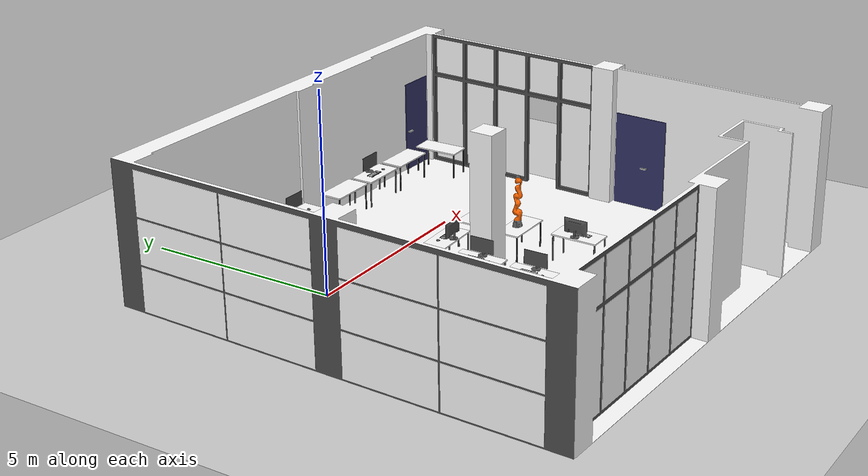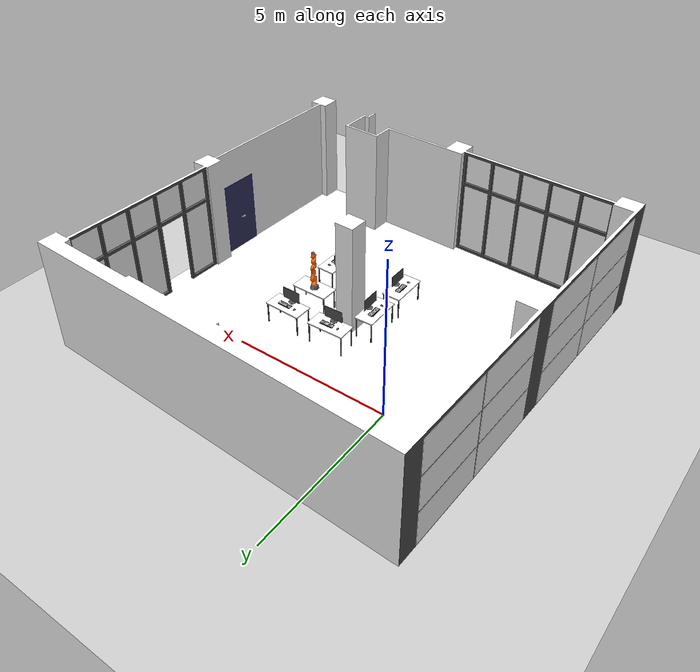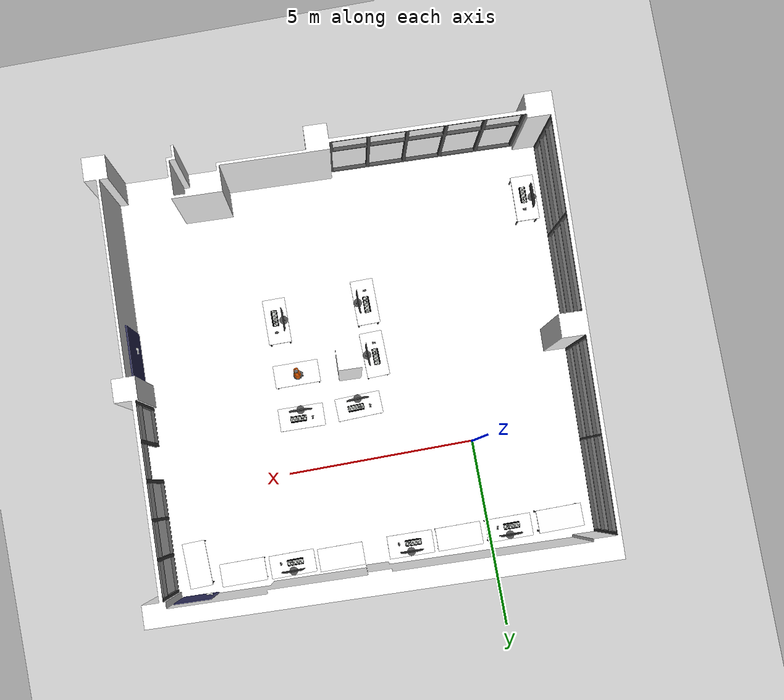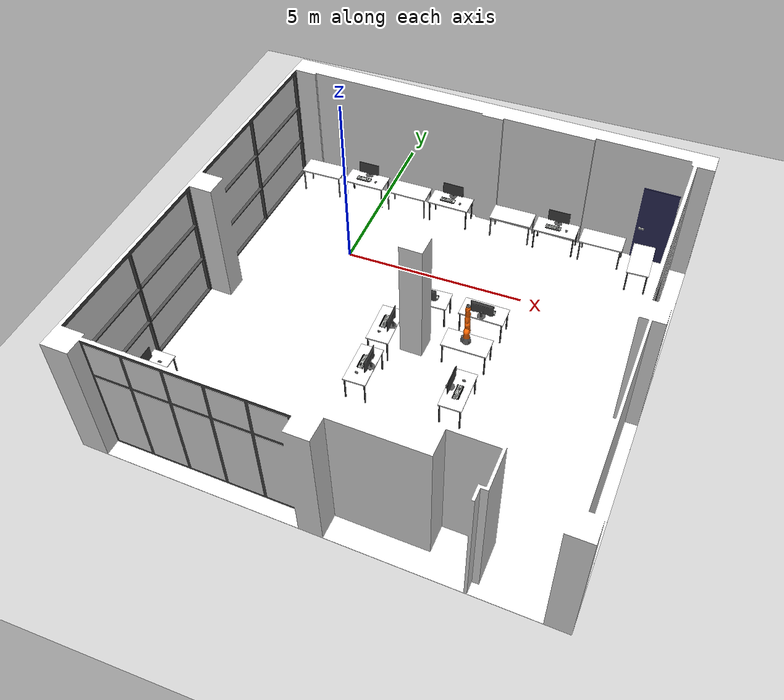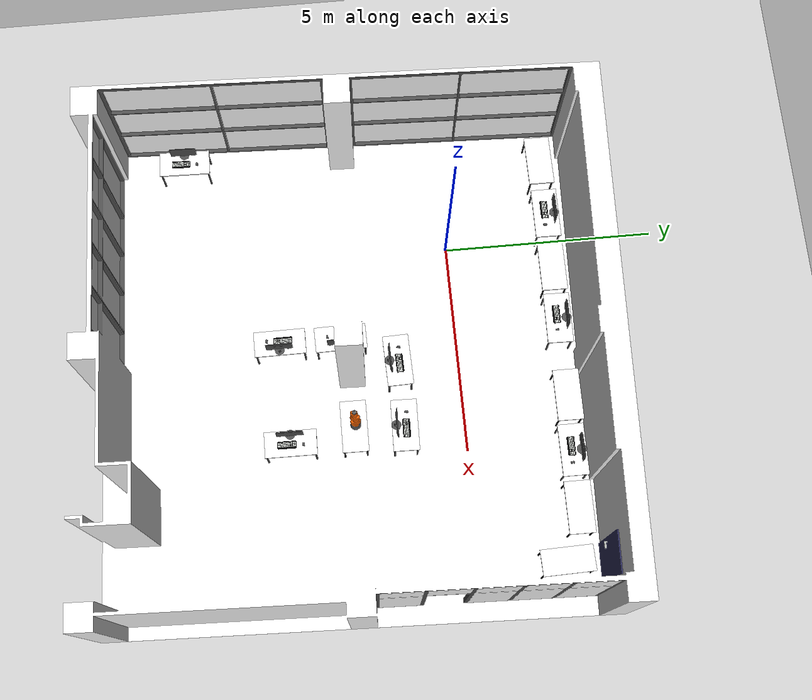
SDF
<sdf version="1.7">
 <world name="default">
  <light name="sun" type="directional">
   <pose>0 0 10 0 -0 0</pose>
   <diffuse>0.8 0.8 0.8 1</diffuse>
   <specular>0.2 0.2 0.2 1</specular>
   <attenuation>
    <range>1000</range>
    <constant>0.9</constant>
    <linear>0.01</linear>
    <quadratic>0.001</quadratic>
   </attenuation>
   <direction>-0.5 0.1 -0.9</direction>
   <spot><inner_angle>0</inner_angle><outer_angle>0</outer_angle><falloff>0</falloff></spot>
  </light>
  <model name="ground_plane">
   <static>1</static>
   <link name="link">
    <collision name="collision">
     <geometry><plane><normal>0 0 1</normal><size>100 100</size></plane></geometry>
     <surface>
      <contact><collide_bitmask>65535</collide_bitmask></contact>
      <friction><ode><mu>100</mu><mu2>50</mu2></ode></friction>
     </surface>
    </collision>
    <visual name="visual">
     <cast_shadows>0</cast_shadows>
     <geometry><plane><normal>0 0 1</normal><size>100 100</size></plane></geometry>
     <material>
      <script><uri>file://media/materials/scripts/gazebo.material</uri><name>Gazebo/Grey</name></script>
     </material>
    </visual>
   </link>
  </model>
  <gravity>0 0 -9.8</gravity>
  <magnetic_field>6e-06 2.3e-05 -4.2e-05</magnetic_field>
  <atmosphere type="adiabatic"/>
  <physics type="ode">
   <max_step_size>0.001</max_step_size>
   <real_time_factor>1</real_time_factor>
   <real_time_update_rate>1000</real_time_update_rate>
  </physics>
  <scene><ambient>0.4 0.4 0.4 1</ambient><background>0.7 0.7 0.7 1</background><shadows>1</shadows></scene>
  <spherical_coordinates>
   <surface_model>EARTH_WGS84</surface_model>
   <latitude_deg>0</latitude_deg>
   <longitude_deg>0</longitude_deg>
   <elevation>0</elevation>
   <heading_deg>0</heading_deg>
  </spherical_coordinates>
  <model name="zidovi">
   <link name="link_0">
    <inertial>
     <mass>1</mass>
     <inertia>
      <ixx>0.166667</ixx>
      <ixy>0</ixy>
      <ixz>0</ixz>
      <iyy>0.166667</iyy>
      <iyz>0</iyz>
      <izz>0.166667</izz>
     </inertia>
    </inertial>
    <pose>3e-06 -0 0 0 -0 0</pose>
    <visual name="visual">
     <pose>0 0 0.03 0 -0 0</pose>
     <geometry>
      <mesh>
       <uri>/home/slaven/catkin_ws/src/my_simulations/models/meshes/zidovi_sticker.dae</uri>
       <scale>1 1 1</scale>
      </mesh>
     </geometry>
    </visual>
    <collision name="collision">
     <max_contacts>100</max_contacts>
     <geometry>
      <mesh>
       <uri>/home/slaven/catkin_ws/src/my_simulations/models/meshes/zidovi_sticker.dae</uri>
       <scale>1 1 1</scale>
      </mesh>
     </geometry>
     <surface>
      <friction>
       <ode><mu>1</mu><mu2>1</mu2><fdir1>0 0 0</fdir1><slip1>0</slip1><slip2>0</slip2></ode>
       <torsional>
        <coefficient>1</coefficient>
        <patch_radius>0</patch_radius>
        <surface_radius>0</surface_radius>
        <use_patch_radius>1</use_patch_radius>
        <ode><slip>0</slip></ode>
       </torsional>
      </friction>
      <bounce><restitution_coefficient>0</restitution_coefficient><threshold>1e+06</threshold></bounce>
      <contact>
       <collide_without_contact>0</collide_without_contact>
       <collide_without_contact_bitmask>1</collide_without_contact_bitmask>
       <collide_bitmask>1</collide_bitmask>
       <ode>
        <soft_cfm>0</soft_cfm>
        <soft_erp>0.2</soft_erp>
        <kp>1e+13</kp>
        <kd>1</kd>
        <max_vel>0.01</max_vel>
        <min_depth>0</min_depth>
       </ode>
       <bullet>
        <split_impulse>1</split_impulse>
        <split_impulse_penetration_threshold>-0.01</split_impulse_penetration_threshold>
        <soft_cfm>0</soft_cfm>
        <soft_erp>0.2</soft_erp>
        <kp>1e+13</kp>
        <kd>1</kd>
       </bullet>
      </contact>
     </surface>
    </collision>
   </link>
   <static>0</static>
   <pose>2.92991 -2.52446 -2.7e-05 -0.000852 -0.000847 -0.035286</pose>
  </model>
  <model name="stol_i_komp">
   <link name="link_1">
    <inertial>
     <mass>1</mass>
     <inertia>
      <ixx>0.166667</ixx>
      <ixy>0</ixy>
      <ixz>0</ixz>
      <iyy>0.166667</iyy>
      <iyz>0</iyz>
      <izz>0.166667</izz>
     </inertia>
    </inertial>
    <visual name="visual">
     <geometry>
      <mesh>
       <uri>/home/slaven/catkin_ws/src/my_simulations/models/meshes/stol_i_komp.dae</uri>
       <scale>1 1 1</scale>
      </mesh>
     </geometry>
    </visual>
    <collision name="collision">
     <geometry>
      <mesh>
       <uri>/home/slaven/catkin_ws/src/my_simulations/models/meshes/stol_i_komp.dae</uri>
       <scale>1 1 1</scale>
      </mesh>
     </geometry>
     <surface>
      <friction>
       <ode><mu>1</mu><mu2>1</mu2><fdir1>0 0 0</fdir1><slip1>0</slip1><slip2>0</slip2></ode>
       <torsional>
        <coefficient>1</coefficient>
        <patch_radius>0</patch_radius>
        <surface_radius>0</surface_radius>
        <use_patch_radius>1</use_patch_radius>
        <ode><slip>0</slip></ode>
       </torsional>
      </friction>
      <bounce><restitution_coefficient>0</restitution_coefficient><threshold>1e+06</threshold></bounce>
      <contact>
       <collide_without_contact>0</collide_without_contact>
       <collide_without_contact_bitmask>1</collide_without_contact_bitmask>
       <collide_bitmask>1</collide_bitmask>
       <ode>
        <soft_cfm>0</soft_cfm>
        <soft_erp>0.2</soft_erp>
        <kp>1e+13</kp>
        <kd>1</kd>
        <max_vel>0.01</max_vel>
        <min_depth>0</min_depth>
       </ode>
       <bullet>
        <split_impulse>1</split_impulse>
        <split_impulse_penetration_threshold>-0.01</split_impulse_penetration_threshold>
        <soft_cfm>0</soft_cfm>
        <soft_erp>0.2</soft_erp>
        <kp>1e+13</kp>
        <kd>1</kd>
       </bullet>
      </contact>
     </surface>
    </collision>
   </link>
   <static>0</static>
   <pose>2.19359 -2.72188 0.7 0 -0 1.59005</pose>
  </model>
  <model name="stol_i_komp_0">
   <link name="link_1">
    <inertial>
     <mass>1</mass>
     <inertia>
      <ixx>0.166667</ixx>
      <ixy>0</ixy>
      <ixz>0</ixz>
      <iyy>0.166667</iyy>
      <iyz>0</iyz>
      <izz>0.166667</izz>
     </inertia>
    </inertial>
    <visual name="visual">
     <geometry>
      <mesh>
       <uri>/home/slaven/catkin_ws/src/my_simulations/models/meshes/stol_i_komp.dae</uri>
       <scale>1 1 1</scale>
      </mesh>
     </geometry>
    </visual>
    <collision name="collision">
     <geometry>
      <mesh>
       <uri>/home/slaven/catkin_ws/src/my_simulations/models/meshes/stol_i_komp.dae</uri>
       <scale>1 1 1</scale>
      </mesh>
     </geometry>
     <surface>
      <friction>
       <ode><mu>1</mu><mu2>1</mu2><fdir1>0 0 0</fdir1><slip1>0</slip1><slip2>0</slip2></ode>
       <torsional>
        <coefficient>1</coefficient>
        <patch_radius>0</patch_radius>
        <surface_radius>0</surface_radius>
        <use_patch_radius>1</use_patch_radius>
        <ode><slip>0</slip></ode>
       </torsional>
      </friction>
      <bounce><restitution_coefficient>0</restitution_coefficient><threshold>1e+06</threshold></bounce>
      <contact>
       <collide_without_contact>0</collide_without_contact>
       <collide_without_contact_bitmask>1</collide_without_contact_bitmask>
       <collide_bitmask>1</collide_bitmask>
       <ode>
        <soft_cfm>0</soft_cfm>
        <soft_erp>0.2</soft_erp>
        <kp>1e+13</kp>
        <kd>1</kd>
        <max_vel>0.01</max_vel>
        <min_depth>0</min_depth>
       </ode>
       <bullet>
        <split_impulse>1</split_impulse>
        <split_impulse_penetration_threshold>-0.01</split_impulse_penetration_threshold>
        <soft_cfm>0</soft_cfm>
        <soft_erp>0.2</soft_erp>
        <kp>1e+13</kp>
        <kd>1</kd>
       </bullet>
      </contact>
     </surface>
    </collision>
   </link>
   <static>0</static>
   <pose>2.18774 -4.14368 0.699965 3.6e-05 -7e-06 1.57567</pose>
  </model>
  <model name="stol_i_komp_1">
   <link name="link_1">
    <inertial>
     <mass>1</mass>
     <inertia>
      <ixx>0.166667</ixx>
      <ixy>0</ixy>
      <ixz>0</ixz>
      <iyy>0.166667</iyy>
      <iyz>0</iyz>
      <izz>0.166667</izz>
     </inertia>
    </inertial>
    <visual name="visual">
     <geometry>
      <mesh>
       <uri>/home/slaven/catkin_ws/src/my_simulations/models/meshes/stol_i_komp.dae</uri>
       <scale>1 1 1</scale>
      </mesh>
     </geometry>
    </visual>
    <collision name="collision">
     <geometry>
      <mesh>
       <uri>/home/slaven/catkin_ws/src/my_simulations/models/meshes/stol_i_komp.dae</uri>
       <scale>1 1 1</scale>
      </mesh>
     </geometry>
     <surface>
      <friction>
       <ode><mu>1</mu><mu2>1</mu2><fdir1>0 0 0</fdir1><slip1>0</slip1><slip2>0</slip2></ode>
       <torsional>
        <coefficient>1</coefficient>
        <patch_radius>0</patch_radius>
        <surface_radius>0</surface_radius>
        <use_patch_radius>1</use_patch_radius>
        <ode><slip>0</slip></ode>
       </torsional>
      </friction>
      <bounce><restitution_coefficient>0</restitution_coefficient><threshold>1e+06</threshold></bounce>
      <contact>
       <collide_without_contact>0</collide_without_contact>
       <collide_without_contact_bitmask>1</collide_without_contact_bitmask>
       <collide_bitmask>1</collide_bitmask>
       <ode>
        <soft_cfm>0</soft_cfm>
        <soft_erp>0.2</soft_erp>
        <kp>1e+13</kp>
        <kd>1</kd>
        <max_vel>0.01</max_vel>
        <min_depth>0</min_depth>
       </ode>
       <bullet>
        <split_impulse>1</split_impulse>
        <split_impulse_penetration_threshold>-0.01</split_impulse_penetration_threshold>
        <soft_cfm>0</soft_cfm>
        <soft_erp>0.2</soft_erp>
        <kp>1e+13</kp>
        <kd>1</kd>
       </bullet>
      </contact>
     </surface>
    </collision>
   </link>
   <static>0</static>
   <pose>4.59845 -4.05765 0.700677 0.001026 -0.001526 -1.5811</pose>
  </model>
  <model name="stol_i_komp_2">
   <link name="link_1">
    <inertial>
     <mass>1</mass>
     <inertia>
      <ixx>0.166667</ixx>
      <ixy>0</ixy>
      <ixz>0</ixz>
      <iyy>0.166667</iyy>
      <iyz>0</iyz>
      <izz>0.166667</izz>
     </inertia>
    </inertial>
    <visual name="visual">
     <geometry>
      <mesh>
       <uri>/home/slaven/catkin_ws/src/my_simulations/models/meshes/stol_i_komp.dae</uri>
       <scale>1 1 1</scale>
      </mesh>
     </geometry>
    </visual>
    <collision name="collision">
     <geometry>
      <mesh>
       <uri>/home/slaven/catkin_ws/src/my_simulations/models/meshes/stol_i_komp.dae</uri>
       <scale>1 1 1</scale>
      </mesh>
     </geometry>
     <surface>
      <friction>
       <ode><mu>1</mu><mu2>1</mu2><fdir1>0 0 0</fdir1><slip1>0</slip1><slip2>0</slip2></ode>
       <torsional>
        <coefficient>1</coefficient>
        <patch_radius>0</patch_radius>
        <surface_radius>0</surface_radius>
        <use_patch_radius>1</use_patch_radius>
        <ode><slip>0</slip></ode>
       </torsional>
      </friction>
      <bounce><restitution_coefficient>0</restitution_coefficient><threshold>1e+06</threshold></bounce>
      <contact>
       <collide_without_contact>0</collide_without_contact>
       <collide_without_contact_bitmask>1</collide_without_contact_bitmask>
       <collide_bitmask>1</collide_bitmask>
       <ode>
        <soft_cfm>0</soft_cfm>
        <soft_erp>0.2</soft_erp>
        <kp>1e+13</kp>
        <kd>1</kd>
        <max_vel>0.01</max_vel>
        <min_depth>0</min_depth>
       </ode>
       <bullet>
        <split_impulse>1</split_impulse>
        <split_impulse_penetration_threshold>-0.01</split_impulse_penetration_threshold>
        <soft_cfm>0</soft_cfm>
        <soft_erp>0.2</soft_erp>
        <kp>1e+13</kp>
        <kd>1</kd>
       </bullet>
      </contact>
     </surface>
    </collision>
   </link>
   <static>0</static>
   <pose>2.85014 -1.43521 0.699805 0.000254 -1.3e-05 0.028795</pose>
  </model>
  <light name="user_point_light_0" type="point">
   <pose>-4.62597 0.168359 1 0 -0 0</pose>
   <diffuse>0.5 0.5 0.5 1</diffuse>
   <specular>0.1 0.1 0.1 1</specular>
   <attenuation>
    <range>20</range>
    <constant>0.5</constant>
    <linear>0.01</linear>
    <quadratic>0.001</quadratic>
   </attenuation>
   <cast_shadows>0</cast_shadows>
   <direction>0 0 -1</direction>
   <spot><inner_angle>0</inner_angle><outer_angle>0</outer_angle><falloff>0</falloff></spot>
  </light>
  <model name="stol_i_komp_3">
   <link name="link_1">
    <inertial>
     <mass>1</mass>
     <inertia>
      <ixx>0.166667</ixx>
      <ixy>0</ixy>
      <ixz>0</ixz>
      <iyy>0.166667</iyy>
      <iyz>0</iyz>
      <izz>0.166667</izz>
     </inertia>
    </inertial>
    <visual name="visual">
     <geometry>
      <mesh>
       <uri>/home/slaven/catkin_ws/src/my_simulations/models/meshes/stol_i_komp.dae</uri>
       <scale>1 1 1</scale>
      </mesh>
     </geometry>
    </visual>
    <collision name="collision">
     <geometry>
      <mesh>
       <uri>/home/slaven/catkin_ws/src/my_simulations/models/meshes/stol_i_komp.dae</uri>
       <scale>1 1 1</scale>
      </mesh>
     </geometry>
     <surface>
      <friction>
       <ode><mu>1</mu><mu2>1</mu2><fdir1>0 0 0</fdir1><slip1>0</slip1><slip2>0</slip2></ode>
       <torsional>
        <coefficient>1</coefficient>
        <patch_radius>0</patch_radius>
        <surface_radius>0</surface_radius>
        <use_patch_radius>1</use_patch_radius>
        <ode><slip>0</slip></ode>
       </torsional>
      </friction>
      <bounce><restitution_coefficient>0</restitution_coefficient><threshold>1e+06</threshold></bounce>
      <contact>
       <collide_without_contact>0</collide_without_contact>
       <collide_without_contact_bitmask>1</collide_without_contact_bitmask>
       <collide_bitmask>1</collide_bitmask>
       <ode>
        <soft_cfm>0</soft_cfm>
        <soft_erp>0.2</soft_erp>
        <kp>1e+13</kp>
        <kd>1</kd>
        <max_vel>0.01</max_vel>
        <min_depth>0</min_depth>
       </ode>
       <bullet>
        <split_impulse>1</split_impulse>
        <split_impulse_penetration_threshold>-0.01</split_impulse_penetration_threshold>
        <soft_cfm>0</soft_cfm>
        <soft_erp>0.2</soft_erp>
        <kp>1e+13</kp>
        <kd>1</kd>
       </bullet>
      </contact>
     </surface>
    </collision>
   </link>
   <static>0</static>
   <pose>4.40014 -1.41546 0.699998 -0 4e-06 -0.022527</pose>
  </model>
  <model name="kuka">
   <link name="link_1">
    <inertial>
     <mass>1</mass>
     <inertia>
      <ixx>0.166667</ixx>
      <ixy>0</ixy>
      <ixz>0</ixz>
      <iyy>0.166667</iyy>
      <iyz>0</iyz>
      <izz>0.166667</izz>
     </inertia>
    </inertial>
    <pose>-0.00628 -0.063343 0.019073 0 -0 0</pose>
    <visual name="visual">
     <geometry>
      <mesh>
       <uri>/home/slaven/catkin_ws/src/my_simulations/models/meshes/LBR IIWA 14 R820.dae</uri>
       <scale>1 1 1</scale>
      </mesh>
     </geometry>
    </visual>
    <collision name="collision">
     <geometry>
      <mesh>
       <uri>/home/slaven/catkin_ws/src/my_simulations/models/meshes/LBR IIWA 14 R820.dae</uri>
       <scale>1 1 1</scale>
      </mesh>
     </geometry>
     <surface>
      <friction>
       <ode><mu>1</mu><mu2>1</mu2><fdir1>0 0 0</fdir1><slip1>0</slip1><slip2>0</slip2></ode>
       <torsional>
        <coefficient>1</coefficient>
        <patch_radius>0</patch_radius>
        <surface_radius>0</surface_radius>
        <use_patch_radius>1</use_patch_radius>
        <ode><slip>0</slip></ode>
       </torsional>
      </friction>
      <bounce><restitution_coefficient>0</restitution_coefficient><threshold>1e+06</threshold></bounce>
      <contact>
       <collide_without_contact>0</collide_without_contact>
       <collide_without_contact_bitmask>1</collide_without_contact_bitmask>
       <collide_bitmask>1</collide_bitmask>
       <ode>
        <soft_cfm>0</soft_cfm>
        <soft_erp>0.2</soft_erp>
        <kp>1e+13</kp>
        <kd>1</kd>
        <max_vel>0.01</max_vel>
        <min_depth>0</min_depth>
       </ode>
       <bullet>
        <split_impulse>1</split_impulse>
        <split_impulse_penetration_threshold>-0.01</split_impulse_penetration_threshold>
        <soft_cfm>0</soft_cfm>
        <soft_erp>0.2</soft_erp>
        <kp>1e+13</kp>
        <kd>1</kd>
       </bullet>
      </contact>
     </surface>
    </collision>
   </link>
   <static>0</static>
   <pose>4.30301 -2.47545 0.71629 0.000173 -0.000193 0.016546</pose>
  </model>
  <model name="stol">
   <link name="link_0">
    <inertial>
     <mass>1</mass>
     <inertia>
      <ixx>0.166667</ixx>
      <ixy>0</ixy>
      <ixz>0</ixz>
      <iyy>0.166667</iyy>
      <iyz>0</iyz>
      <izz>0.166667</izz>
     </inertia>
    </inertial>
    <visual name="visual">
     <geometry>
      <mesh><uri>/home/slaven/catkin_ws/src/my_simulations/models/meshes/stol.dae</uri><scale>1 1 1</scale></mesh>
     </geometry>
    </visual>
    <collision name="collision">
     <geometry>
      <mesh><uri>/home/slaven/catkin_ws/src/my_simulations/models/meshes/stol.dae</uri><scale>1 1 1</scale></mesh>
     </geometry>
     <surface>
      <friction>
       <ode><mu>1</mu><mu2>1</mu2><fdir1>0 0 0</fdir1><slip1>0</slip1><slip2>0</slip2></ode>
       <torsional>
        <coefficient>1</coefficient>
        <patch_radius>0</patch_radius>
        <surface_radius>0</surface_radius>
        <use_patch_radius>1</use_patch_radius>
        <ode><slip>0</slip></ode>
       </torsional>
      </friction>
      <bounce><restitution_coefficient>0</restitution_coefficient><threshold>1e+06</threshold></bounce>
      <contact>
       <collide_without_contact>0</collide_without_contact>
       <collide_without_contact_bitmask>1</collide_without_contact_bitmask>
       <collide_bitmask>1</collide_bitmask>
       <ode>
        <soft_cfm>0</soft_cfm>
        <soft_erp>0.2</soft_erp>
        <kp>1e+13</kp>
        <kd>1</kd>
        <max_vel>0.01</max_vel>
        <min_depth>0</min_depth>
       </ode>
       <bullet>
        <split_impulse>1</split_impulse>
        <split_impulse_penetration_threshold>-0.01</split_impulse_penetration_threshold>
        <soft_cfm>0</soft_cfm>
        <soft_erp>0.2</soft_erp>
        <kp>1e+13</kp>
        <kd>1</kd>
       </bullet>
      </contact>
     </surface>
    </collision>
   </link>
   <static>0</static>
   <pose>4.32731 -2.57704 0.699756 0.000138 -0.000345 -0.009697</pose>
  </model>
  <model name="stol_i_komp_4">
   <link name="link_1">
    <inertial>
     <mass>1</mass>
     <inertia>
      <ixx>0.166667</ixx>
      <ixy>0</ixy>
      <ixz>0</ixz>
      <iyy>0.166667</iyy>
      <iyz>0</iyz>
      <izz>0.166667</izz>
     </inertia>
    </inertial>
    <visual name="visual">
     <geometry>
      <mesh>
       <uri>/home/slaven/catkin_ws/src/my_simulations/models/meshes/stol_i_komp.dae</uri>
       <scale>1 1 1</scale>
      </mesh>
     </geometry>
    </visual>
    <collision name="collision">
     <geometry>
      <mesh>
       <uri>/home/slaven/catkin_ws/src/my_simulations/models/meshes/stol_i_komp.dae</uri>
       <scale>1 1 1</scale>
      </mesh>
     </geometry>
     <surface>
      <friction>
       <ode><mu>1</mu><mu2>1</mu2><fdir1>0 0 0</fdir1><slip1>0</slip1><slip2>0</slip2></ode>
       <torsional>
        <coefficient>1</coefficient>
        <patch_radius>0</patch_radius>
        <surface_radius>0</surface_radius>
        <use_patch_radius>1</use_patch_radius>
        <ode><slip>0</slip></ode>
       </torsional>
      </friction>
      <bounce><restitution_coefficient>0</restitution_coefficient><threshold>1e+06</threshold></bounce>
      <contact>
       <collide_without_contact>0</collide_without_contact>
       <collide_without_contact_bitmask>1</collide_without_contact_bitmask>
       <collide_bitmask>1</collide_bitmask>
       <ode>
        <soft_cfm>0</soft_cfm>
        <soft_erp>0.2</soft_erp>
        <kp>1e+13</kp>
        <kd>1</kd>
        <max_vel>0.01</max_vel>
        <min_depth>0</min_depth>
       </ode>
       <bullet>
        <split_impulse>1</split_impulse>
        <split_impulse_penetration_threshold>-0.01</split_impulse_penetration_threshold>
        <soft_cfm>0</soft_cfm>
        <soft_erp>0.2</soft_erp>
        <kp>1e+13</kp>
        <kd>1</kd>
       </bullet>
      </contact>
     </surface>
    </collision>
   </link>
   <static>0</static>
   <pose>2.15978 2.40815 0.69945 0.000234 8e-06 3.11956</pose>
  </model>
  <model name="stol_i_komp_5">
   <link name="link_1">
    <inertial>
     <mass>1</mass>
     <inertia>
      <ixx>0.166667</ixx>
      <ixy>0</ixy>
      <ixz>0</ixz>
      <iyy>0.166667</iyy>
      <iyz>0</iyz>
      <izz>0.166667</izz>
     </inertia>
    </inertial>
    <visual name="visual">
     <geometry>
      <mesh>
       <uri>/home/slaven/catkin_ws/src/my_simulations/models/meshes/stol_i_komp.dae</uri>
       <scale>1 1 1</scale>
      </mesh>
     </geometry>
    </visual>
    <collision name="collision">
     <geometry>
      <mesh>
       <uri>/home/slaven/catkin_ws/src/my_simulations/models/meshes/stol_i_komp.dae</uri>
       <scale>1 1 1</scale>
      </mesh>
     </geometry>
     <surface>
      <friction>
       <ode><mu>1</mu><mu2>1</mu2><fdir1>0 0 0</fdir1><slip1>0</slip1><slip2>0</slip2></ode>
       <torsional>
        <coefficient>1</coefficient>
        <patch_radius>0</patch_radius>
        <surface_radius>0</surface_radius>
        <use_patch_radius>1</use_patch_radius>
        <ode><slip>0</slip></ode>
       </torsional>
      </friction>
      <bounce><restitution_coefficient>0</restitution_coefficient><threshold>1e+06</threshold></bounce>
      <contact>
       <collide_without_contact>0</collide_without_contact>
       <collide_without_contact_bitmask>1</collide_without_contact_bitmask>
       <collide_bitmask>1</collide_bitmask>
       <ode>
        <soft_cfm>0</soft_cfm>
        <soft_erp>0.2</soft_erp>
        <kp>1e+13</kp>
        <kd>1</kd>
        <max_vel>0.01</max_vel>
        <min_depth>0</min_depth>
       </ode>
       <bullet>
        <split_impulse>1</split_impulse>
        <split_impulse_penetration_threshold>-0.01</split_impulse_penetration_threshold>
        <soft_cfm>0</soft_cfm>
        <soft_erp>0.2</soft_erp>
        <kp>1e+13</kp>
        <kd>1</kd>
       </bullet>
      </contact>
     </surface>
    </collision>
   </link>
   <static>0</static>
   <pose>-0.479364 2.44294 0.699515 0.000246 -0.000113 3.13127</pose>
  </model>
  <model name="stol_i_komp_6">
   <link name="link_1">
    <inertial>
     <mass>1</mass>
     <inertia>
      <ixx>0.166667</ixx>
      <ixy>0</ixy>
      <ixz>0</ixz>
      <iyy>0.166667</iyy>
      <iyz>0</iyz>
      <izz>0.166667</izz>
     </inertia>
    </inertial>
    <visual name="visual">
     <geometry>
      <mesh>
       <uri>/home/slaven/catkin_ws/src/my_simulations/models/meshes/stol_i_komp.dae</uri>
       <scale>1 1 1</scale>
      </mesh>
     </geometry>
    </visual>
    <collision name="collision">
     <geometry>
      <mesh>
       <uri>/home/slaven/catkin_ws/src/my_simulations/models/meshes/stol_i_komp.dae</uri>
       <scale>1 1 1</scale>
      </mesh>
     </geometry>
     <surface>
      <friction>
       <ode><mu>1</mu><mu2>1</mu2><fdir1>0 0 0</fdir1><slip1>0</slip1><slip2>0</slip2></ode>
       <torsional>
        <coefficient>1</coefficient>
        <patch_radius>0</patch_radius>
        <surface_radius>0</surface_radius>
        <use_patch_radius>1</use_patch_radius>
        <ode><slip>0</slip></ode>
       </torsional>
      </friction>
      <bounce><restitution_coefficient>0</restitution_coefficient><threshold>1e+06</threshold></bounce>
      <contact>
       <collide_without_contact>0</collide_without_contact>
       <collide_without_contact_bitmask>1</collide_without_contact_bitmask>
       <collide_bitmask>1</collide_bitmask>
       <ode>
        <soft_cfm>0</soft_cfm>
        <soft_erp>0.2</soft_erp>
        <kp>1e+13</kp>
        <kd>1</kd>
        <max_vel>0.01</max_vel>
        <min_depth>0</min_depth>
       </ode>
       <bullet>
        <split_impulse>1</split_impulse>
        <split_impulse_penetration_threshold>-0.01</split_impulse_penetration_threshold>
        <soft_cfm>0</soft_cfm>
        <soft_erp>0.2</soft_erp>
        <kp>1e+13</kp>
        <kd>1</kd>
       </bullet>
      </contact>
     </surface>
    </collision>
   </link>
   <static>0</static>
   <pose>-2.54241 -6.13897 0.699538 -6.9e-05 -2e-06 -1.59372</pose>
  </model>
  <model name="stol_i_komp_7">
   <link name="link_1">
    <inertial>
     <mass>1</mass>
     <inertia>
      <ixx>0.166667</ixx>
      <ixy>0</ixy>
      <ixz>0</ixz>
      <iyy>0.166667</iyy>
      <iyz>0</iyz>
      <izz>0.166667</izz>
     </inertia>
    </inertial>
    <visual name="visual">
     <geometry>
      <mesh>
       <uri>/home/slaven/catkin_ws/src/my_simulations/models/meshes/stol_i_komp.dae</uri>
       <scale>1 1 1</scale>
      </mesh>
     </geometry>
    </visual>
    <collision name="collision">
     <geometry>
      <mesh>
       <uri>/home/slaven/catkin_ws/src/my_simulations/models/meshes/stol_i_komp.dae</uri>
       <scale>1 1 1</scale>
      </mesh>
     </geometry>
     <surface>
      <friction>
       <ode><mu>1</mu><mu2>1</mu2><fdir1>0 0 0</fdir1><slip1>0</slip1><slip2>0</slip2></ode>
       <torsional>
        <coefficient>1</coefficient>
        <patch_radius>0</patch_radius>
        <surface_radius>0</surface_radius>
        <use_patch_radius>1</use_patch_radius>
        <ode><slip>0</slip></ode>
       </torsional>
      </friction>
      <bounce><restitution_coefficient>0</restitution_coefficient><threshold>1e+06</threshold></bounce>
      <contact>
       <collide_without_contact>0</collide_without_contact>
       <collide_without_contact_bitmask>1</collide_without_contact_bitmask>
       <collide_bitmask>1</collide_bitmask>
       <ode>
        <soft_cfm>0</soft_cfm>
        <soft_erp>0.2</soft_erp>
        <kp>1e+13</kp>
        <kd>1</kd>
        <max_vel>0.01</max_vel>
        <min_depth>0</min_depth>
       </ode>
       <bullet>
        <split_impulse>1</split_impulse>
        <split_impulse_penetration_threshold>-0.01</split_impulse_penetration_threshold>
        <soft_cfm>0</soft_cfm>
        <soft_erp>0.2</soft_erp>
        <kp>1e+13</kp>
        <kd>1</kd>
       </bullet>
      </contact>
     </surface>
    </collision>
   </link>
   <static>0</static>
   <pose>5.31395 2.35413 0.699569 0.000105 -0 3.13913</pose>
  </model>
  <model name="stol_0">
   <link name="link_0">
    <inertial>
     <mass>1</mass>
     <inertia>
      <ixx>0.166667</ixx>
      <ixy>0</ixy>
      <ixz>0</ixz>
      <iyy>0.166667</iyy>
      <iyz>0</iyz>
      <izz>0.166667</izz>
     </inertia>
    </inertial>
    <visual name="visual">
     <geometry>
      <mesh><uri>/home/slaven/catkin_ws/src/my_simulations/models/meshes/stol.dae</uri><scale>1 1 1</scale></mesh>
     </geometry>
    </visual>
    <collision name="collision">
     <geometry>
      <mesh><uri>/home/slaven/catkin_ws/src/my_simulations/models/meshes/stol.dae</uri><scale>1 1 1</scale></mesh>
     </geometry>
     <surface>
      <friction>
       <ode><mu>1</mu><mu2>1</mu2><fdir1>0 0 0</fdir1><slip1>0</slip1><slip2>0</slip2></ode>
       <torsional>
        <coefficient>1</coefficient>
        <patch_radius>0</patch_radius>
        <surface_radius>0</surface_radius>
        <use_patch_radius>1</use_patch_radius>
        <ode><slip>0</slip></ode>
       </torsional>
      </friction>
      <bounce><restitution_coefficient>0</restitution_coefficient><threshold>1e+06</threshold></bounce>
      <contact>
       <collide_without_contact>0</collide_without_contact>
       <collide_without_contact_bitmask>1</collide_without_contact_bitmask>
       <collide_bitmask>1</collide_bitmask>
       <ode>
        <soft_cfm>0</soft_cfm>
        <soft_erp>0.2</soft_erp>
        <kp>1e+13</kp>
        <kd>1</kd>
        <max_vel>0.01</max_vel>
        <min_depth>0</min_depth>
       </ode>
       <bullet>
        <split_impulse>1</split_impulse>
        <split_impulse_penetration_threshold>-0.01</split_impulse_penetration_threshold>
        <soft_cfm>0</soft_cfm>
        <soft_erp>0.2</soft_erp>
        <kp>1e+13</kp>
        <kd>1</kd>
       </bullet>
      </contact>
     </surface>
    </collision>
   </link>
   <static>0</static>
   <pose>4.0212 2.40204 0.699449 0.000234 8e-06 -0.008152</pose>
  </model>
  <model name="stol_1">
   <link name="link_0">
    <inertial>
     <mass>1</mass>
     <inertia>
      <ixx>0.166667</ixx>
      <ixy>0</ixy>
      <ixz>0</ixz>
      <iyy>0.166667</iyy>
      <iyz>0</iyz>
      <izz>0.166667</izz>
     </inertia>
    </inertial>
    <visual name="visual">
     <geometry>
      <mesh><uri>/home/slaven/catkin_ws/src/my_simulations/models/meshes/stol.dae</uri><scale>1 1 1</scale></mesh>
     </geometry>
    </visual>
    <collision name="collision">
     <geometry>
      <mesh><uri>/home/slaven/catkin_ws/src/my_simulations/models/meshes/stol.dae</uri><scale>1 1 1</scale></mesh>
     </geometry>
     <surface>
      <friction>
       <ode><mu>1</mu><mu2>1</mu2><fdir1>0 0 0</fdir1><slip1>0</slip1><slip2>0</slip2></ode>
       <torsional>
        <coefficient>1</coefficient>
        <patch_radius>0</patch_radius>
        <surface_radius>0</surface_radius>
        <use_patch_radius>1</use_patch_radius>
        <ode><slip>0</slip></ode>
       </torsional>
      </friction>
      <bounce><restitution_coefficient>0</restitution_coefficient><threshold>1e+06</threshold></bounce>
      <contact>
       <collide_without_contact>0</collide_without_contact>
       <collide_without_contact_bitmask>1</collide_without_contact_bitmask>
       <collide_bitmask>1</collide_bitmask>
       <ode>
        <soft_cfm>0</soft_cfm>
        <soft_erp>0.2</soft_erp>
        <kp>1e+13</kp>
        <kd>1</kd>
        <max_vel>0.01</max_vel>
        <min_depth>0</min_depth>
       </ode>
       <bullet>
        <split_impulse>1</split_impulse>
        <split_impulse_penetration_threshold>-0.01</split_impulse_penetration_threshold>
        <soft_cfm>0</soft_cfm>
        <soft_erp>0.2</soft_erp>
        <kp>1e+13</kp>
        <kd>1</kd>
       </bullet>
      </contact>
     </surface>
    </collision>
   </link>
   <static>0</static>
   <pose>6.63164 2.33198 0.700056 0.00025 7.9e-05 -0.007982</pose>
  </model>
  <model name="stol_2">
   <link name="link_0">
    <inertial>
     <mass>1</mass>
     <inertia>
      <ixx>0.166667</ixx>
      <ixy>0</ixy>
      <ixz>0</ixz>
      <iyy>0.166667</iyy>
      <iyz>0</iyz>
      <izz>0.166667</izz>
     </inertia>
    </inertial>
    <visual name="visual">
     <geometry>
      <mesh><uri>/home/slaven/catkin_ws/src/my_simulations/models/meshes/stol.dae</uri><scale>1 1 1</scale></mesh>
     </geometry>
    </visual>
    <collision name="collision">
     <geometry>
      <mesh><uri>/home/slaven/catkin_ws/src/my_simulations/models/meshes/stol.dae</uri><scale>1 1 1</scale></mesh>
     </geometry>
     <surface>
      <friction>
       <ode><mu>1</mu><mu2>1</mu2><fdir1>0 0 0</fdir1><slip1>0</slip1><slip2>0</slip2></ode>
       <torsional>
        <coefficient>1</coefficient>
        <patch_radius>0</patch_radius>
        <surface_radius>0</surface_radius>
        <use_patch_radius>1</use_patch_radius>
        <ode><slip>0</slip></ode>
       </torsional>
      </friction>
      <bounce><restitution_coefficient>0</restitution_coefficient><threshold>1e+06</threshold></bounce>
      <contact>
       <collide_without_contact>0</collide_without_contact>
       <collide_without_contact_bitmask>1</collide_without_contact_bitmask>
       <collide_bitmask>1</collide_bitmask>
       <ode>
        <soft_cfm>0</soft_cfm>
        <soft_erp>0.2</soft_erp>
        <kp>1e+13</kp>
        <kd>1</kd>
        <max_vel>0.01</max_vel>
        <min_depth>0</min_depth>
       </ode>
       <bullet>
        <split_impulse>1</split_impulse>
        <split_impulse_penetration_threshold>-0.01</split_impulse_penetration_threshold>
        <soft_cfm>0</soft_cfm>
        <soft_erp>0.2</soft_erp>
        <kp>1e+13</kp>
        <kd>1</kd>
       </bullet>
      </contact>
     </surface>
    </collision>
   </link>
   <static>0</static>
   <pose>7.7931 1.91978 0.699999 4e-06 -0 -1.54413</pose>
  </model>
  <model name="stol_3">
   <link name="link_0">
    <inertial>
     <mass>1</mass>
     <inertia>
      <ixx>0.166667</ixx>
      <ixy>0</ixy>
      <ixz>0</ixz>
      <iyy>0.166667</iyy>
      <iyz>0</iyz>
      <izz>0.166667</izz>
     </inertia>
    </inertial>
    <visual name="visual">
     <geometry>
      <mesh><uri>/home/slaven/catkin_ws/src/my_simulations/models/meshes/stol.dae</uri><scale>1 1 1</scale></mesh>
     </geometry>
    </visual>
    <collision name="collision">
     <geometry>
      <mesh><uri>/home/slaven/catkin_ws/src/my_simulations/models/meshes/stol.dae</uri><scale>1 1 1</scale></mesh>
     </geometry>
     <surface>
      <friction>
       <ode><mu>1</mu><mu2>1</mu2><fdir1>0 0 0</fdir1><slip1>0</slip1><slip2>0</slip2></ode>
       <torsional>
        <coefficient>1</coefficient>
        <patch_radius>0</patch_radius>
        <surface_radius>0</surface_radius>
        <use_patch_radius>1</use_patch_radius>
        <ode><slip>0</slip></ode>
       </torsional>
      </friction>
      <bounce><restitution_coefficient>0</restitution_coefficient><threshold>1e+06</threshold></bounce>
      <contact>
       <collide_without_contact>0</collide_without_contact>
       <collide_without_contact_bitmask>1</collide_without_contact_bitmask>
       <collide_bitmask>1</collide_bitmask>
       <ode>
        <soft_cfm>0</soft_cfm>
        <soft_erp>0.2</soft_erp>
        <kp>1e+13</kp>
        <kd>1</kd>
        <max_vel>0.01</max_vel>
        <min_depth>0</min_depth>
       </ode>
       <bullet>
        <split_impulse>1</split_impulse>
        <split_impulse_penetration_threshold>-0.01</split_impulse_penetration_threshold>
        <soft_cfm>0</soft_cfm>
        <soft_erp>0.2</soft_erp>
        <kp>1e+13</kp>
        <kd>1</kd>
       </bullet>
      </contact>
     </surface>
    </collision>
   </link>
   <static>0</static>
   <pose>0.861471 2.42722 0.699449 0.000234 8e-06 -0.008386</pose>
  </model>
  <model name="stol_4">
   <link name="link_0">
    <inertial>
     <mass>1</mass>
     <inertia>
      <ixx>0.166667</ixx>
      <ixy>0</ixy>
      <ixz>0</ixz>
      <iyy>0.166667</iyy>
      <iyz>0</iyz>
      <izz>0.166667</izz>
     </inertia>
    </inertial>
    <visual name="visual">
     <geometry>
      <mesh><uri>/home/slaven/catkin_ws/src/my_simulations/models/meshes/stol.dae</uri><scale>1 1 1</scale></mesh>
     </geometry>
    </visual>
    <collision name="collision">
     <geometry>
      <mesh><uri>/home/slaven/catkin_ws/src/my_simulations/models/meshes/stol.dae</uri><scale>1 1 1</scale></mesh>
     </geometry>
     <surface>
      <friction>
       <ode><mu>1</mu><mu2>1</mu2><fdir1>0 0 0</fdir1><slip1>0</slip1><slip2>0</slip2></ode>
       <torsional>
        <coefficient>1</coefficient>
        <patch_radius>0</patch_radius>
        <surface_radius>0</surface_radius>
        <use_patch_radius>1</use_patch_radius>
        <ode><slip>0</slip></ode>
       </torsional>
      </friction>
      <bounce><restitution_coefficient>0</restitution_coefficient><threshold>1e+06</threshold></bounce>
      <contact>
       <collide_without_contact>0</collide_without_contact>
       <collide_without_contact_bitmask>1</collide_without_contact_bitmask>
       <collide_bitmask>1</collide_bitmask>
       <ode>
        <soft_cfm>0</soft_cfm>
        <soft_erp>0.2</soft_erp>
        <kp>1e+13</kp>
        <kd>1</kd>
        <max_vel>0.01</max_vel>
        <min_depth>0</min_depth>
       </ode>
       <bullet>
        <split_impulse>1</split_impulse>
        <split_impulse_penetration_threshold>-0.01</split_impulse_penetration_threshold>
        <soft_cfm>0</soft_cfm>
        <soft_erp>0.2</soft_erp>
        <kp>1e+13</kp>
        <kd>1</kd>
       </bullet>
      </contact>
     </surface>
    </collision>
   </link>
   <static>0</static>
   <pose>-1.84823 2.43843 0.707044 -0.016158 -0.005646 0.002398</pose>
  </model>
 </world>
</sdf>
